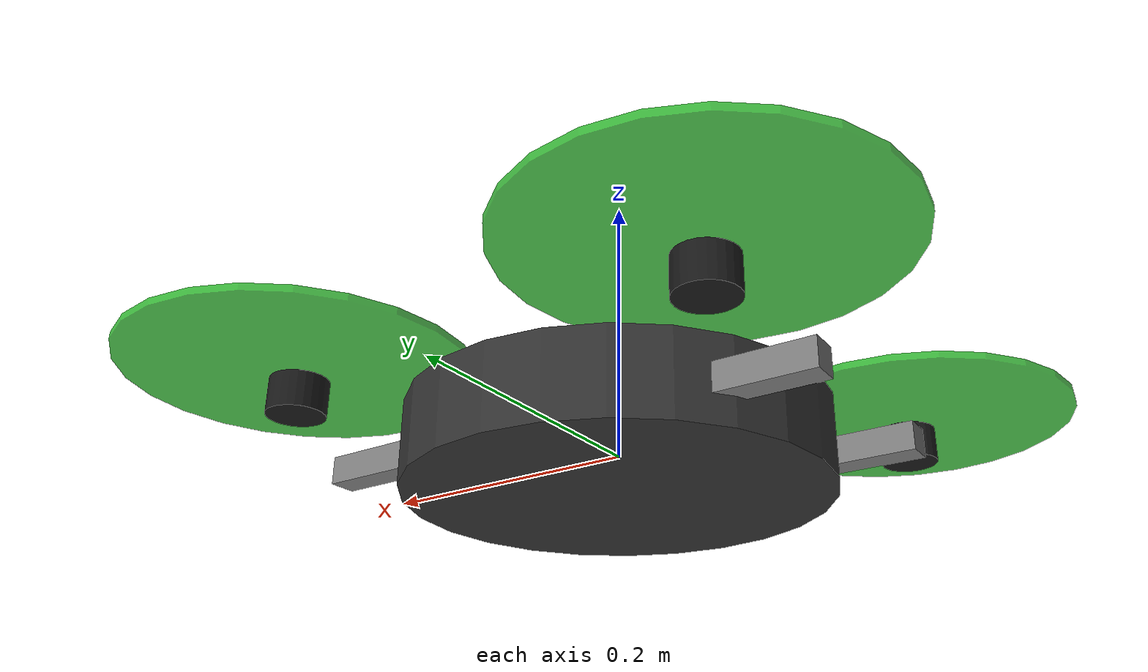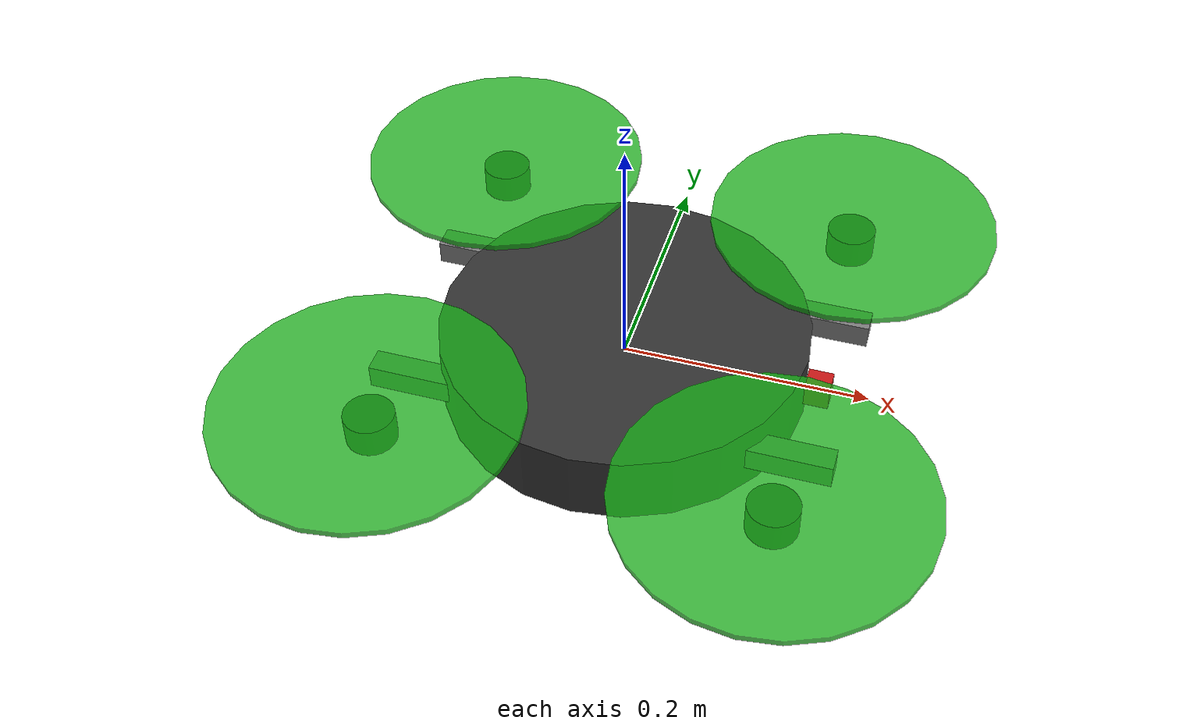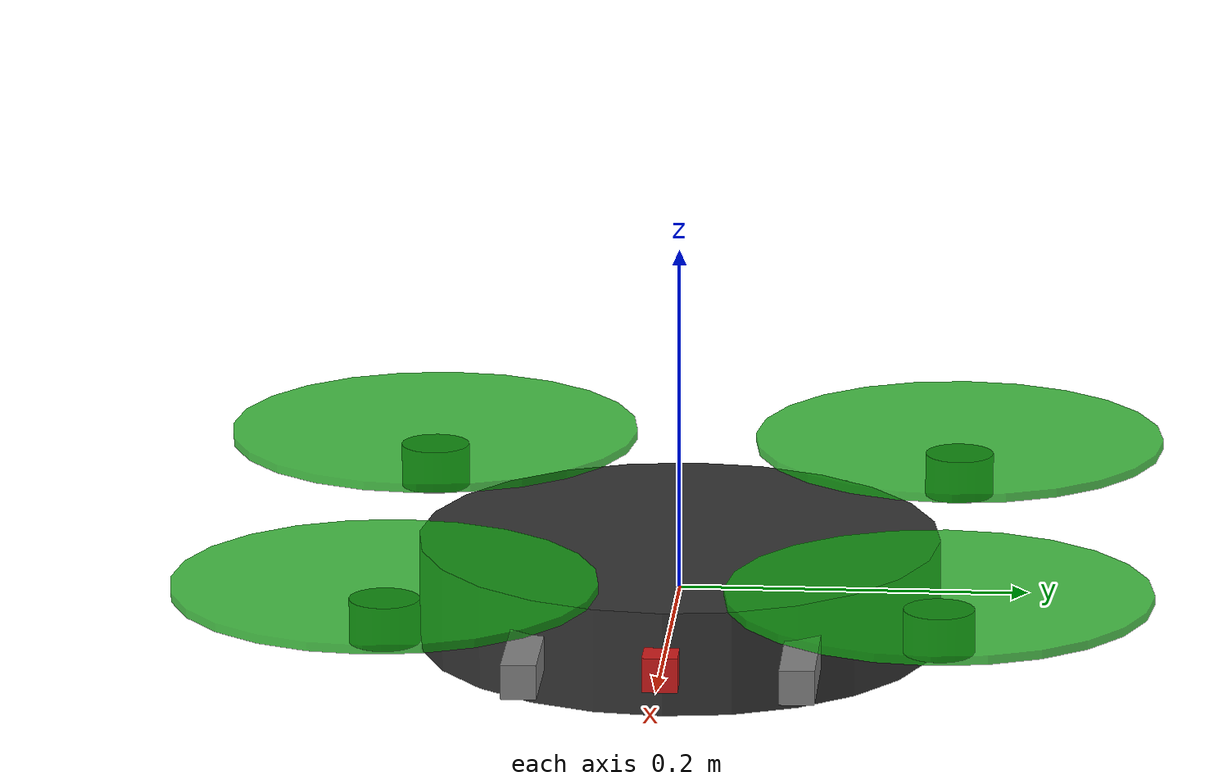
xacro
<?xml version="1.0"?>
<robot name="quadrotor" xmlns:xacro="http://www.ros.org/wiki/xacro">

  <!-- ── Properties ───────────────────────────────────────────── -->
  <xacro:property name="body_mass"   value="1.5"/>
  <xacro:property name="body_radius" value="0.15"/>
  <xacro:property name="body_height" value="0.06"/>
  <xacro:property name="arm_length"  value="0.22"/>
  <xacro:property name="prop_radius" value="0.12"/>

  <!-- ── Base link (body) ─────────────────────────────────────── -->
  <link name="base_link">
    <inertial>
      <mass value="${body_mass}"/>
      <origin xyz="0 0 0" rpy="0 0 0"/>
      <inertia ixx="0.0347563" ixy="0" ixz="0"
               iyy="0.0458929" iyz="0"
               izz="0.0977"  />
    </inertial>
    <visual>
      <origin xyz="0 0 0" rpy="0 0 0"/>
      <geometry>
        <cylinder radius="${body_radius}" length="${body_height}"/>
      </geometry>
      <material name="dark_grey">
        <color rgba="0.2 0.2 0.2 1"/>
      </material>
    </visual>
    <collision>
      <origin xyz="0 0 0" rpy="0 0 0"/>
      <geometry>
        <cylinder radius="${body_radius}" length="${body_height}"/>
      </geometry>
    </collision>
  </link>

  <!-- ── Macro: one arm + motor + prop ───────────────────────── -->
  <xacro:macro name="arm" params="name x y z spin_dir">

    <!-- arm visual -->
    <link name="${name}_arm">
      <visual>
        <origin xyz="${x/2} ${y/2} 0" rpy="0 0 0"/>
        <geometry>
          <box size="${arm_length} 0.02 0.02"/>
        </geometry>
        <material name="grey">
          <color rgba="0.5 0.5 0.5 1"/>
        </material>
      </visual>
      <inertial>
        <mass value="0.05"/>
        <inertia ixx="0.0001" ixy="0" ixz="0"
                 iyy="0.0001" iyz="0" izz="0.0001"/>
      </inertial>
    </link>

    <joint name="${name}_arm_joint" type="fixed">
      <parent link="base_link"/>
      <child  link="${name}_arm"/>
      <origin xyz="0 0 0" rpy="0 0 0"/>
    </joint>

    <!-- motor -->
    <link name="${name}_motor">
      <visual>
        <origin xyz="0 0 0" rpy="0 0 0"/>
        <geometry>
          <cylinder radius="0.02" length="0.025"/>
        </geometry>
        <material name="black">
          <color rgba="0.1 0.1 0.1 1"/>
        </material>
      </visual>
      <inertial>
        <mass value="0.025"/>
        <inertia ixx="0.00001" ixy="0" ixz="0"
                 iyy="0.00001" iyz="0" izz="0.00001"/>
      </inertial>
    </link>

    <joint name="${name}_motor_joint" type="fixed">
      <parent link="base_link"/>
      <child  link="${name}_motor"/>
      <origin xyz="${x} ${y} 0.025" rpy="0 0 0"/>
    </joint>

    <!-- propeller -->
    <link name="${name}_prop">
      <visual>
        <origin xyz="0 0 0" rpy="0 0 0"/>
        <geometry>
          <cylinder radius="${prop_radius}" length="0.005"/>
        </geometry>
        <material name="prop_color">
          <color rgba="0.1 0.7 0.1 0.8"/>
        </material>
      </visual>
      <inertial>
        <mass value="0.01"/>
        <inertia ixx="0.000025" ixy="0" ixz="0"
                 iyy="0.000025" iyz="0" izz="0.00005"/>
      </inertial>
    </link>

    <joint name="${name}_prop_joint" type="continuous">
      <parent link="${name}_motor"/>
      <child  link="${name}_prop"/>
      <origin xyz="0 0 0.02" rpy="0 0 0"/>
      <axis   xyz="0 0 ${spin_dir}"/>
    </joint>

  </xacro:macro>

  <!-- ── Instantiate 4 arms (X config) ───────────────────────── -->
  <!--  FL = front-left, FR = front-right, RL = rear-left, RR = rear-right  -->
  <xacro:arm name="fl" x=" 0.155"  y=" 0.155"  z="0" spin_dir=" 1"/>
  <xacro:arm name="fr" x=" 0.155"  y="-0.155"  z="0" spin_dir="-1"/>
  <xacro:arm name="rl" x="-0.155"  y=" 0.155"  z="0" spin_dir="-1"/>
  <xacro:arm name="rr" x="-0.155"  y="-0.155"  z="0" spin_dir=" 1"/>

  <!-- ── IMU link ─────────────────────────────────────────────── -->
  <link name="imu_link">
    <inertial>
      <mass value="0.001"/>
      <inertia ixx="0.000001" ixy="0" ixz="0"
               iyy="0.000001" iyz="0" izz="0.000001"/>
    </inertial>
  </link>
  <joint name="imu_joint" type="fixed">
    <parent link="base_link"/>
    <child  link="imu_link"/>
    <origin xyz="0 0 0" rpy="0 0 0"/>
  </joint>

  <!-- ── Camera link (front-facing) ──────────────────────────── -->
  <link name="camera_link">
    <visual>
      <geometry><box size="0.02 0.02 0.02"/></geometry>
      <material name="red"><color rgba="0.8 0.1 0.1 1"/></material>
    </visual>
    <inertial>
      <mass value="0.01"/>
      <inertia ixx="0.000001" ixy="0" ixz="0"
               iyy="0.000001" iyz="0" izz="0.000001"/>
    </inertial>
  </link>
  <joint name="camera_joint" type="fixed">
    <parent link="base_link"/>
    <child  link="camera_link"/>
    <origin xyz="0.16 0 0" rpy="0 0 0"/>
  </joint>

  <!-- ── Gazebo plugins ───────────────────────────────────────── -->

  <!-- IMU plugin -->
  <gazebo reference="imu_link">
    <sensor name="imu_sensor" type="imu">
      <always_on>true</always_on>
      <update_rate>100</update_rate>
      <plugin name="imu_plugin" filename="libgazebo_ros_imu_sensor.so">
        <ros>
          <remapping>~/out:=/imu</remapping>
        </ros>
        <initial_orientation_as_reference>false</initial_orientation_as_reference>
      </plugin>
    </sensor>
  </gazebo>

  <!-- Camera plugin (front) -->
  <gazebo reference="camera_link">
    <sensor name="front_camera" type="camera">
      <always_on>true</always_on>
      <update_rate>30</update_rate>
      <camera>
        <horizontal_fov>1.5708</horizontal_fov>
        <image>
          <width>640</width>
          <height>480</height>
          <format>R8G8B8</format>
        </image>
        <clip>
          <near>0.05</near>
          <far>50</far>
        </clip>
      </camera>
      <plugin name="camera_plugin" filename="libgazebo_ros_camera.so">
        <ros>
          <remapping>image_raw:=/camera/image</remapping>
        </ros>
        <camera_name>front_camera</camera_name>
        <frame_name>camera_link</frame_name>
      </plugin>
    </sensor>
  </gazebo>

  <!-- Quadrotor physics plugin (lift + drag) -->
  <gazebo>
    <plugin name="gazebo_ros_quadrotor" filename="libgazebo_ros_planar_move.so">
      <ros>
        <remapping>cmd_vel:=/cmd_vel</remapping>
      </ros>
    </plugin>
  </gazebo>

</robot>
